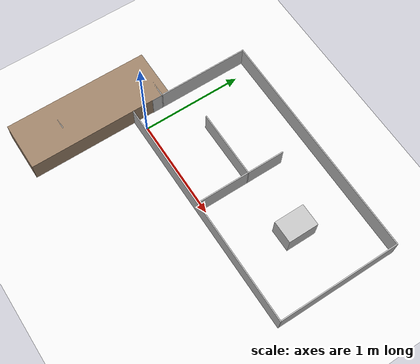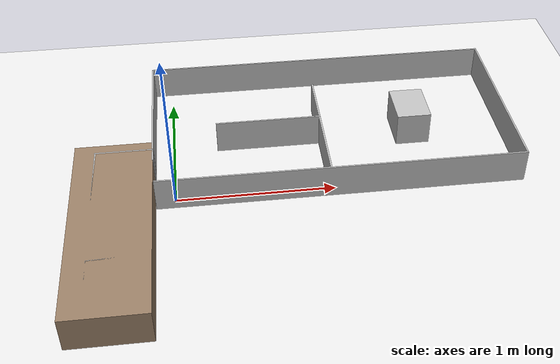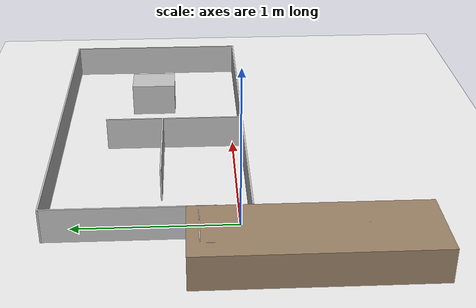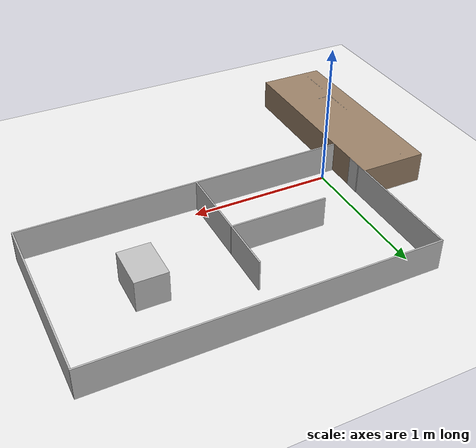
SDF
<sdf version="1.8">
 <world name="fms_course">
  <physics name="4ms" type="ode">
   <max_step_size>0.004</max_step_size>
   <real_time_factor>1.0</real_time_factor>
  </physics>
  <plugin filename="gz-sim-physics-system" name="gz::sim::systems::Physics"/>
  <plugin filename="gz-sim-sensors-system" name="gz::sim::systems::Sensors">
   <render_engine>ogre2</render_engine>
  </plugin>
  <plugin filename="gz-sim-user-commands-system" name="gz::sim::systems::UserCommands"/>
  <plugin filename="gz-sim-scene-broadcaster-system" name="gz::sim::systems::SceneBroadcaster"/>
  <plugin filename="gz-sim-imu-system" name="gz::sim::systems::Imu"/>
  <light type="directional" name="sun">
   <cast_shadows>false</cast_shadows>
   <pose>0 0 5 0 0 0</pose>
   <diffuse>1 1 1 1</diffuse>
   <specular>0.3 0.3 0.3 1</specular>
   <direction>-0.3 0.2 -1</direction>
  </light>
  <model name="ground">
   <static>true</static>
   <link name="l">
    <collision name="c"><geometry><plane><normal>0 0 1</normal><size>20 20</size></plane></geometry></collision>
    <visual name="v">
     <geometry><plane><normal>0 0 1</normal><size>20 20</size></plane></geometry>
     <material><diffuse>0.92 0.92 0.92 1</diffuse></material>
    </visual>
   </link>
  </model>
  <model name="block_0">
   <static>true</static>
   <pose>-0.3600 -0.3900 0.110 0 0 0</pose>
   <link name="l">
    <collision name="c"><geometry><box><size>0.4800 1.4200 0.220</size></box></geometry></collision>
    <visual name="v">
     <geometry><box><size>0.4800 1.4200 0.220</size></box></geometry>
     <material><diffuse>0.6 0.5 0.4 1</diffuse></material>
    </visual>
   </link>
  </model>
  <model name="wall_0">
   <static>true</static>
   <pose>-0.4720 -0.8710 0.110 0 0 0</pose>
   <link name="l">
    <collision name="c"><geometry><box><size>0.0100 0.3700 0.220</size></box></geometry></collision>
    <visual name="v">
     <geometry><box><size>0.0100 0.3700 0.220</size></box></geometry>
     <material><diffuse>0.75 0.75 0.75 1</diffuse><specular>0.2 0.2 0.2 1</specular></material>
    </visual>
   </link>
  </model>
  <model name="wall_1">
   <static>true</static>
   <pose>-0.3970 -0.6810 0.110 0 0 0</pose>
   <link name="l">
    <collision name="c"><geometry><box><size>0.1600 0.0100 0.220</size></box></geometry></collision>
    <visual name="v">
     <geometry><box><size>0.1600 0.0100 0.220</size></box></geometry>
     <material><diffuse>0.75 0.75 0.75 1</diffuse><specular>0.2 0.2 0.2 1</specular></material>
    </visual>
   </link>
  </model>
  <model name="wall_2">
   <static>true</static>
   <pose>1.0380 -0.0610 0.110 0 0 0</pose>
   <link name="l">
    <collision name="c"><geometry><box><size>2.3100 0.0100 0.220</size></box></geometry></collision>
    <visual name="v">
     <geometry><box><size>2.3100 0.0100 0.220</size></box></geometry>
     <material><diffuse>0.75 0.75 0.75 1</diffuse><specular>0.2 0.2 0.2 1</specular></material>
    </visual>
   </link>
  </model>
  <model name="wall_3">
   <static>true</static>
   <pose>-0.4720 -0.2160 0.110 0 0 0</pose>
   <link name="l">
    <collision name="c"><geometry><box><size>0.0100 0.9200 0.220</size></box></geometry></collision>
    <visual name="v">
     <geometry><box><size>0.0100 0.9200 0.220</size></box></geometry>
     <material><diffuse>0.75 0.75 0.75 1</diffuse><specular>0.2 0.2 0.2 1</specular></material>
    </visual>
   </link>
  </model>
  <model name="wall_4">
   <static>true</static>
   <pose>-0.1220 0.1940 0.110 0 0 0</pose>
   <link name="l">
    <collision name="c"><geometry><box><size>0.0100 0.1000 0.220</size></box></geometry></collision>
    <visual name="v">
     <geometry><box><size>0.0100 0.1000 0.220</size></box></geometry>
     <material><diffuse>0.75 0.75 0.75 1</diffuse><specular>0.2 0.2 0.2 1</specular></material>
    </visual>
   </link>
  </model>
  <model name="wall_5">
   <static>true</static>
   <pose>-0.2970 0.2490 0.110 0 0 0</pose>
   <link name="l">
    <collision name="c"><geometry><box><size>0.3600 0.0100 0.220</size></box></geometry></collision>
    <visual name="v">
     <geometry><box><size>0.3600 0.0100 0.220</size></box></geometry>
     <material><diffuse>0.75 0.75 0.75 1</diffuse><specular>0.2 0.2 0.2 1</specular></material>
    </visual>
   </link>
  </model>
  <model name="wall_6">
   <static>true</static>
   <pose>0.9580 0.2040 0.110 0 0 0</pose>
   <link name="l">
    <collision name="c"><geometry><box><size>0.0100 0.5200 0.220</size></box></geometry></collision>
    <visual name="v">
     <geometry><box><size>0.0100 0.5200 0.220</size></box></geometry>
     <material><diffuse>0.75 0.75 0.75 1</diffuse><specular>0.2 0.2 0.2 1</specular></material>
    </visual>
   </link>
  </model>
  <model name="wall_7">
   <static>true</static>
   <pose>0.6230 0.4690 0.110 0 0 0</pose>
   <link name="l">
    <collision name="c"><geometry><box><size>0.6800 0.0100 0.220</size></box></geometry></collision>
    <visual name="v">
     <geometry><box><size>0.6800 0.0100 0.220</size></box></geometry>
     <material><diffuse>0.75 0.75 0.75 1</diffuse><specular>0.2 0.2 0.2 1</specular></material>
    </visual>
   </link>
  </model>
  <model name="wall_8">
   <static>true</static>
   <pose>1.5730 0.5440 0.110 0 0 0</pose>
   <link name="l">
    <collision name="c"><geometry><box><size>0.2200 0.3000 0.220</size></box></geometry></collision>
    <visual name="v">
     <geometry><box><size>0.2200 0.3000 0.220</size></box></geometry>
     <material><diffuse>0.75 0.75 0.75 1</diffuse><specular>0.2 0.2 0.2 1</specular></material>
    </visual>
   </link>
  </model>
  <model name="wall_9">
   <static>true</static>
   <pose>0.9580 0.6590 0.110 0 0 0</pose>
   <link name="l">
    <collision name="c"><geometry><box><size>0.0100 0.3700 0.220</size></box></geometry></collision>
    <visual name="v">
     <geometry><box><size>0.0100 0.3700 0.220</size></box></geometry>
     <material><diffuse>0.75 0.75 0.75 1</diffuse><specular>0.2 0.2 0.2 1</specular></material>
    </visual>
   </link>
  </model>
  <model name="wall_10">
   <static>true</static>
   <pose>-0.1220 0.6990 0.110 0 0 0</pose>
   <link name="l">
    <collision name="c"><geometry><box><size>0.0100 0.8900 0.220</size></box></geometry></collision>
    <visual name="v">
     <geometry><box><size>0.0100 0.8900 0.220</size></box></geometry>
     <material><diffuse>0.75 0.75 0.75 1</diffuse><specular>0.2 0.2 0.2 1</specular></material>
    </visual>
   </link>
  </model>
  <model name="wall_11">
   <static>true</static>
   <pose>2.1880 0.5440 0.110 0 0 0</pose>
   <link name="l">
    <collision name="c"><geometry><box><size>0.0100 1.2000 0.220</size></box></geometry></collision>
    <visual name="v">
     <geometry><box><size>0.0100 1.2000 0.220</size></box></geometry>
     <material><diffuse>0.75 0.75 0.75 1</diffuse><specular>0.2 0.2 0.2 1</specular></material>
    </visual>
   </link>
  </model>
  <model name="wall_12">
   <static>true</static>
   <pose>1.0330 1.1490 0.110 0 0 0</pose>
   <link name="l">
    <collision name="c"><geometry><box><size>2.3200 0.0100 0.220</size></box></geometry></collision>
    <visual name="v">
     <geometry><box><size>2.3200 0.0100 0.220</size></box></geometry>
     <material><diffuse>0.75 0.75 0.75 1</diffuse><specular>0.2 0.2 0.2 1</specular></material>
    </visual>
   </link>
  </model>
 </world>
</sdf>
